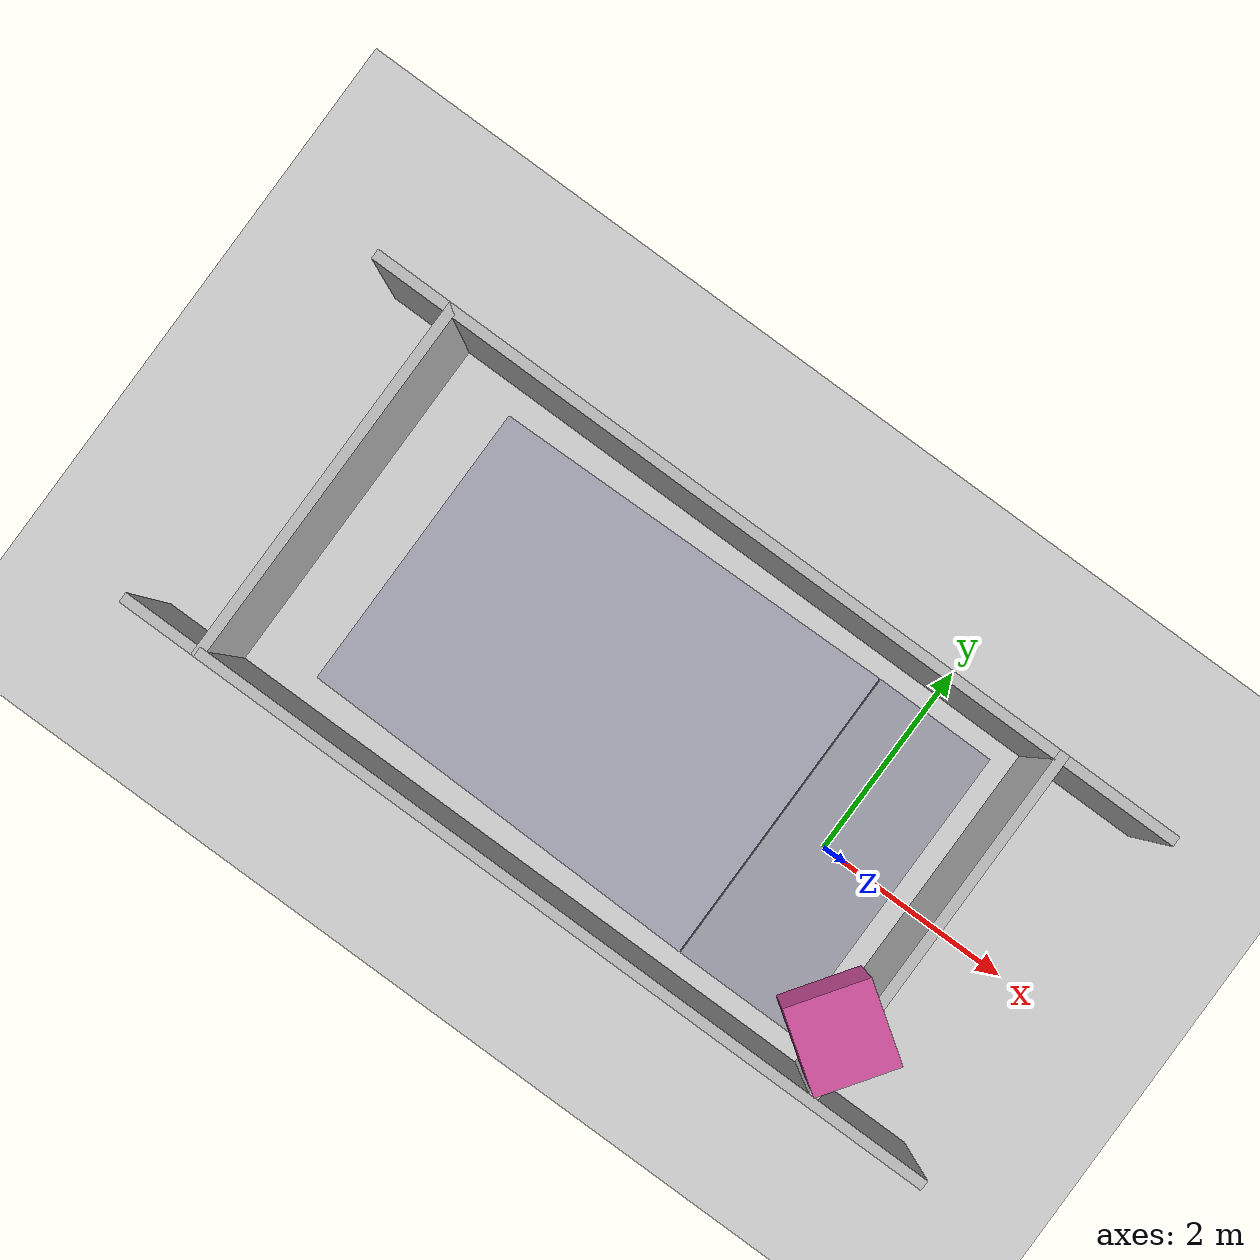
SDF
<?xml version="1.0" ?>
<sdf version="1.6">
  <world name="ramp_scan">
    <physics type="ode">
      <max_step_size>0.001</max_step_size>
      <real_time_update_rate>500</real_time_update_rate>
      <max_contacts>20</max_contacts>
      <ode>
        <solver><type>quick</type><iters>50</iters><sor>1.3</sor></solver>
        <constraints><cfm>0.0</cfm><erp>0.2</erp></constraints>
      </ode>
    </physics>
    <plugin name="gazebo_ros_init" filename="libgazebo_ros_init.so"/>
    <plugin name="gazebo_ros_factory" filename="libgazebo_ros_factory.so"/>
    <include><uri>model://sun</uri></include>
    <include><uri>model://ground_plane</uri></include>

    <!-- 坡顶平台：顶面 z=0.73，x∈[-0.56,0.64] -->
    <model name="platform">
      <static>true</static>
      <pose>0.04 0 0.63 0 0 0</pose>
      <link name="link">
        <collision name="col"><geometry><box><size>1.2 3.0 0.2</size></box></geometry>
          <surface><friction><ode><mu>1.0</mu><mu2>1.0</mu2></ode></friction></surface>
        </collision>
        <visual name="vis"><geometry><box><size>1.2 3.0 0.2</size></box></geometry>
          <material><ambient>0.6 0.6 0.65 1</ambient></material></visual>
      </link>
    </model>

    <!-- 10° 下坡：box 4.2x3.0x0.2，pitch=-10°，顶面高边 (-0.56,0.73)、低边 (-4.7,0) -->
    <model name="ramp">
      <static>true</static>
      <pose>-2.624 0 0.266 0 -0.174533 0</pose>
      <link name="link">
        <collision name="col">
          <geometry><box><size>4.2 3.0 0.2</size></box></geometry>
          <surface><friction><ode><mu>1.0</mu><mu2>1.0</mu2></ode></friction></surface>
        </collision>
        <visual name="vis">
          <geometry><box><size>4.2 3.0 0.2</size></box></geometry>
          <material><ambient>0.6 0.6 0.65 1</ambient></material>
        </visual>
      </link>
    </model>

    <!-- 边界墙 -->
    <model name="wall_north">
      <static>true</static>
      <pose>-2.0 1.8 0.75 0 0 0</pose>
      <link name="link"><collision name="col"><geometry><box><size>8.4 0.1 1.5</size></box></geometry></collision>
        <visual name="vis"><geometry><box><size>8.4 0.1 1.5</size></box></geometry></visual></link>
    </model>
    <model name="wall_south">
      <static>true</static>
      <pose>-2.0 -1.8 0.75 0 0 0</pose>
      <link name="link"><collision name="col"><geometry><box><size>8.4 0.1 1.5</size></box></geometry></collision>
        <visual name="vis"><geometry><box><size>8.4 0.1 1.5</size></box></geometry></visual></link>
    </model>
    <model name="wall_back">
      <static>true</static>
      <pose>-5.4 0 0.75 0 0 0</pose>
      <link name="link"><collision name="col"><geometry><box><size>0.1 3.7 1.5</size></box></geometry></collision>
        <visual name="vis"><geometry><box><size>0.1 3.7 1.5</size></box></geometry></visual></link>
    </model>
    <model name="wall_front">
      <static>true</static>
      <pose>1.0 0 0.75 0 0 0</pose>
      <link name="link"><collision name="col"><geometry><box><size>0.1 3.7 1.5</size></box></geometry></collision>
        <visual name="vis"><geometry><box><size>0.1 3.7 1.5</size></box></geometry></visual></link>
    </model>

    <!-- P4 注入箱：0.8³，原始位姿在平台侧后方（运行时搬到轨迹前方） -->
    <model name="obs_5">
      <static>true</static>
      <pose>0.9 -1.2 1.13 0 0 -0.6</pose>
      <link name="link">
        <collision name="col"><geometry><box><size>0.8 0.8 0.8</size></box></geometry></collision>
        <visual name="vis"><geometry><box><size>0.8 0.8 0.8</size></box></geometry>
          <material><ambient>0.8 0.3 0.6 1</ambient></material></visual>
      </link>
    </model>
  </world>
</sdf>
